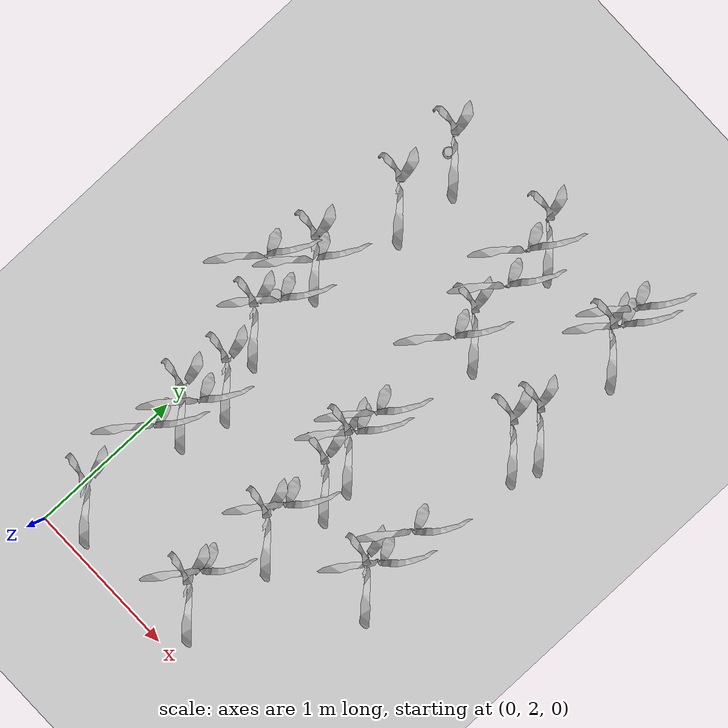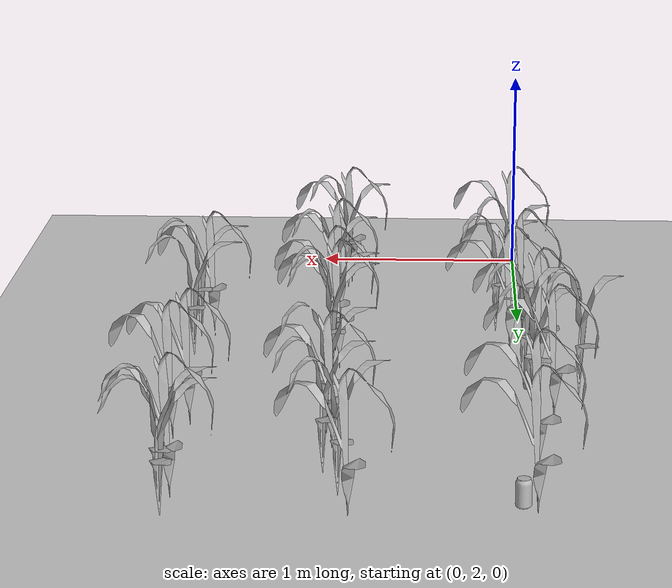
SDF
<sdf version="1.7">
 <world name="default">
  <model name="ground_plane">
   <static>1</static>
   <link name="link">
    <collision name="collision">
     <geometry><plane><normal>0 0 1</normal><size>100 100</size></plane></geometry>
     <surface>
      <contact><collide_bitmask>65535</collide_bitmask></contact>
      <friction><ode><mu>100</mu><mu2>50</mu2></ode></friction>
     </surface>
    </collision>
    <visual name="visual">
     <cast_shadows>0</cast_shadows>
     <geometry><plane><normal>0 0 1</normal><size>100 100</size></plane></geometry>
     <material>
      <script><uri>file://media/materials/scripts/gazebo.material</uri><name>Gazebo/Grey</name></script>
     </material>
    </visual>
   </link>
  </model>
  <model name="maize_01">
   <static>0</static>
   <pose>0.049824 3.46854 -0 0 -2e-06 0.000121</pose>
   <link name="maize_01_link">
    <inertial>
     <pose>0 0 0.01 0 -0 0</pose>
     <mass>0.3</mass>
     <inertia>
      <ixx>0.00334167</ixx>
      <ixy>0</ixy>
      <ixz>0</ixz>
      <iyy>0.00334167</iyy>
      <iyz>0</iyz>
      <izz>1.66667e-05</izz>
     </inertia>
     <pose>0 0 0.1 0 -0 0</pose>
    </inertial>
    <collision name="collision">
     <pose>0 0 0.2 0 -0 0</pose>
     <geometry><box><size>0.02 0.02 0.4</size></box></geometry>
     <surface><friction><ode><mu>10</mu><mu2>10</mu2></ode></friction></surface>
    </collision>
    <visual name="visual">
     <geometry>
      <mesh><uri>model://maize_01/meshes/maize_01.dae</uri><scale>0.683166 0.683166 0.683166</scale></mesh>
     </geometry>
    </visual>
   </link>
  </model>
  <model name="maize_02">
   <static>0</static>
   <pose>0.111758 3.16505 -0 0 -3e-06 7.7e-05</pose>
   <link name="maize_02_link">
    <inertial>
     <pose>0 0 0.01 0 -0 0</pose>
     <mass>0.3</mass>
     <inertia>
      <ixx>0.00334167</ixx>
      <ixy>0</ixy>
      <ixz>0</ixz>
      <iyy>0.00334167</iyy>
      <iyz>0</iyz>
      <izz>1.66667e-05</izz>
     </inertia>
     <pose>0 0 0.1 0 -0 0</pose>
    </inertial>
    <collision name="collision">
     <pose>0 0 0.2 0 -0 0</pose>
     <geometry><box><size>0.02 0.02 0.4</size></box></geometry>
     <surface><friction><ode><mu>10</mu><mu2>10</mu2></ode></friction></surface>
    </collision>
    <visual name="visual">
     <geometry>
      <mesh><uri>model://maize_02/meshes/maize_02.dae</uri><scale>0.683166 0.683166 0.683166</scale></mesh>
     </geometry>
    </visual>
   </link>
  </model>
  <model name="maize_01_0">
   <static>0</static>
   <pose>-0.015999 3.17206 1e-06 2e-05 -3.1e-05 -0.000122</pose>
   <link name="maize_01_link">
    <inertial>
     <pose>0 0 0.01 0 -0 0</pose>
     <mass>0.3</mass>
     <inertia>
      <ixx>0.00334167</ixx>
      <ixy>0</ixy>
      <ixz>0</ixz>
      <iyy>0.00334167</iyy>
      <iyz>0</iyz>
      <izz>1.66667e-05</izz>
     </inertia>
     <pose>0 0 0.1 0 -0 0</pose>
    </inertial>
    <collision name="collision">
     <pose>0 0 0.2 0 -0 0</pose>
     <geometry><box><size>0.02 0.02 0.4</size></box></geometry>
     <surface><friction><ode><mu>10</mu><mu2>10</mu2></ode></friction></surface>
    </collision>
    <visual name="visual">
     <geometry>
      <mesh><uri>model://maize_01/meshes/maize_01.dae</uri><scale>0.683166 0.683166 0.683166</scale></mesh>
     </geometry>
    </visual>
   </link>
  </model>
  <model name="maize_02_0">
   <static>0</static>
   <pose>0.042009 2.87635 -0 -4e-06 1.1e-05 4.1e-05</pose>
   <link name="maize_02_link">
    <inertial>
     <pose>0 0 0.01 0 -0 0</pose>
     <mass>0.3</mass>
     <inertia>
      <ixx>0.00334167</ixx>
      <ixy>0</ixy>
      <ixz>0</ixz>
      <iyy>0.00334167</iyy>
      <iyz>0</iyz>
      <izz>1.66667e-05</izz>
     </inertia>
     <pose>0 0 0.1 0 -0 0</pose>
    </inertial>
    <collision name="collision">
     <pose>0 0 0.2 0 -0 0</pose>
     <geometry><box><size>0.02 0.02 0.4</size></box></geometry>
     <surface><friction><ode><mu>10</mu><mu2>10</mu2></ode></friction></surface>
    </collision>
    <visual name="visual">
     <geometry>
      <mesh><uri>model://maize_02/meshes/maize_02.dae</uri><scale>0.683166 0.683166 0.683166</scale></mesh>
     </geometry>
    </visual>
   </link>
  </model>
  <model name="maize_01_1">
   <static>0</static>
   <pose>0.011051 2.38704 -1e-05 -2.3e-05 1e-06 9.6e-05</pose>
   <link name="maize_01_link">
    <inertial>
     <pose>0 0 0.01 0 -0 0</pose>
     <mass>0.3</mass>
     <inertia>
      <ixx>0.00334167</ixx>
      <ixy>0</ixy>
      <ixz>0</ixz>
      <iyy>0.00334167</iyy>
      <iyz>0</iyz>
      <izz>1.66667e-05</izz>
     </inertia>
     <pose>0 0 0.1 0 -0 0</pose>
    </inertial>
    <collision name="collision">
     <pose>0 0 0.2 0 -0 0</pose>
     <geometry><box><size>0.02 0.02 0.4</size></box></geometry>
     <surface><friction><ode><mu>10</mu><mu2>10</mu2></ode></friction></surface>
    </collision>
    <visual name="visual">
     <geometry>
      <mesh><uri>model://maize_01/meshes/maize_01.dae</uri><scale>0.683166 0.683166 0.683166</scale></mesh>
     </geometry>
    </visual>
   </link>
  </model>
  <model name="maize_01_6">
   <static>0</static>
   <pose>-0.076784 3.80554 -0 -1e-06 0 -8.8e-05</pose>
   <link name="maize_01_link">
    <inertial>
     <pose>0 0 0.01 0 -0 0</pose>
     <mass>0.3</mass>
     <inertia>
      <ixx>0.00334167</ixx>
      <ixy>0</ixy>
      <ixz>0</ixz>
      <iyy>0.00334167</iyy>
      <iyz>0</iyz>
      <izz>1.66667e-05</izz>
     </inertia>
     <pose>0 0 0.1 0 -0 0</pose>
    </inertial>
    <collision name="collision">
     <pose>0 0 0.2 0 -0 0</pose>
     <geometry><box><size>0.02 0.02 0.4</size></box></geometry>
     <surface><friction><ode><mu>10</mu><mu2>10</mu2></ode></friction></surface>
    </collision>
    <visual name="visual">
     <geometry>
      <mesh><uri>model://maize_01/meshes/maize_01.dae</uri><scale>0.683166 0.683166 0.683166</scale></mesh>
     </geometry>
    </visual>
   </link>
  </model>
  <model name="maize_02_7">
   <static>0</static>
   <pose>0.000118 3.91355 -0 0 -1e-06 -0.010854</pose>
   <link name="maize_02_link">
    <inertial>
     <pose>0 0 0.01 0 -0 0</pose>
     <mass>0.3</mass>
     <inertia>
      <ixx>0.00334167</ixx>
      <ixy>0</ixy>
      <ixz>0</ixz>
      <iyy>0.00334167</iyy>
      <iyz>0</iyz>
      <izz>1.66667e-05</izz>
     </inertia>
     <pose>0 0 0.1 0 -0 0</pose>
    </inertial>
    <collision name="collision">
     <pose>0 0 0.2 0 -0 0</pose>
     <geometry><box><size>0.02 0.02 0.4</size></box></geometry>
     <surface><friction><ode><mu>10</mu><mu2>10</mu2></ode></friction></surface>
    </collision>
    <visual name="visual">
     <geometry>
      <mesh><uri>model://maize_02/meshes/maize_02.dae</uri><scale>0.683166 0.683166 0.683166</scale></mesh>
     </geometry>
    </visual>
   </link>
  </model>
  <model name="maize_02_8">
   <static>0</static>
   <pose>-0.243542 4.02964 -1e-05 -0 2.1e-05 6.4e-05</pose>
   <link name="maize_02_link">
    <inertial>
     <pose>0 0 0.01 0 -0 0</pose>
     <mass>0.3</mass>
     <inertia>
      <ixx>0.00334167</ixx>
      <ixy>0</ixy>
      <ixz>0</ixz>
      <iyy>0.00334167</iyy>
      <iyz>0</iyz>
      <izz>1.66667e-05</izz>
     </inertia>
     <pose>0 0 0.1 0 -0 0</pose>
    </inertial>
    <collision name="collision">
     <pose>0 0 0.2 0 -0 0</pose>
     <geometry><box><size>0.02 0.02 0.4</size></box></geometry>
     <surface><friction><ode><mu>10</mu><mu2>10</mu2></ode></friction></surface>
    </collision>
    <visual name="visual">
     <geometry>
      <mesh><uri>model://maize_02/meshes/maize_02.dae</uri><scale>0.683166 0.683166 0.683166</scale></mesh>
     </geometry>
    </visual>
   </link>
  </model>
  <model name="maize_02_9">
   <static>0</static>
   <pose>-0.032657 4.22394 -0 1e-06 -0 -0.000264</pose>
   <link name="maize_02_link">
    <inertial>
     <pose>0 0 0.01 0 -0 0</pose>
     <mass>0.3</mass>
     <inertia>
      <ixx>0.00334167</ixx>
      <ixy>0</ixy>
      <ixz>0</ixz>
      <iyy>0.00334167</iyy>
      <iyz>0</iyz>
      <izz>1.66667e-05</izz>
     </inertia>
     <pose>0 0 0.1 0 -0 0</pose>
    </inertial>
    <collision name="collision">
     <pose>0 0 0.2 0 -0 0</pose>
     <geometry><box><size>0.02 0.02 0.4</size></box></geometry>
     <surface><friction><ode><mu>10</mu><mu2>10</mu2></ode></friction></surface>
    </collision>
    <visual name="visual">
     <geometry>
      <mesh><uri>model://maize_02/meshes/maize_02.dae</uri><scale>0.683166 0.683166 0.683166</scale></mesh>
     </geometry>
    </visual>
   </link>
  </model>
  <model name="maize_01_7">
   <static>0</static>
   <pose>-0.119233 4.33145 -0 0 2e-06 -1.6e-05</pose>
   <link name="maize_01_link">
    <inertial>
     <pose>0 0 0.01 0 -0 0</pose>
     <mass>0.3</mass>
     <inertia>
      <ixx>0.00334167</ixx>
      <ixy>0</ixy>
      <ixz>0</ixz>
      <iyy>0.00334167</iyy>
      <iyz>0</iyz>
      <izz>1.66667e-05</izz>
     </inertia>
     <pose>0 0 0.1 0 -0 0</pose>
    </inertial>
    <collision name="collision">
     <pose>0 0 0.2 0 -0 0</pose>
     <geometry><box><size>0.02 0.02 0.4</size></box></geometry>
     <surface><friction><ode><mu>10</mu><mu2>10</mu2></ode></friction></surface>
    </collision>
    <visual name="visual">
     <geometry>
      <mesh><uri>model://maize_01/meshes/maize_01.dae</uri><scale>0.683166 0.683166 0.683166</scale></mesh>
     </geometry>
    </visual>
   </link>
  </model>
  <model name="maize_01_8">
   <static>0</static>
   <pose>-0.031178 4.91656 0 1.8e-05 -1.1e-05 -7.1e-05</pose>
   <link name="maize_01_link">
    <inertial>
     <pose>0 0 0.01 0 -0 0</pose>
     <mass>0.3</mass>
     <inertia>
      <ixx>0.00334167</ixx>
      <ixy>0</ixy>
      <ixz>0</ixz>
      <iyy>0.00334167</iyy>
      <iyz>0</iyz>
      <izz>1.66667e-05</izz>
     </inertia>
     <pose>0 0 0.1 0 -0 0</pose>
    </inertial>
    <collision name="collision">
     <pose>0 0 0.2 0 -0 0</pose>
     <geometry><box><size>0.02 0.02 0.4</size></box></geometry>
     <surface><friction><ode><mu>10</mu><mu2>10</mu2></ode></friction></surface>
    </collision>
    <visual name="visual">
     <geometry>
      <mesh><uri>model://maize_01/meshes/maize_01.dae</uri><scale>0.683166 0.683166 0.683166</scale></mesh>
     </geometry>
    </visual>
   </link>
  </model>
  <model name="maize_01_9">
   <static>0</static>
   <pose>-0.013724 5.3365 0 -3.3e-05 -1.6e-05 -3.9e-05</pose>
   <link name="maize_01_link">
    <inertial>
     <pose>0 0 0.01 0 -0 0</pose>
     <mass>0.3</mass>
     <inertia>
      <ixx>0.00334167</ixx>
      <ixy>0</ixy>
      <ixz>0</ixz>
      <iyy>0.00334167</iyy>
      <iyz>0</iyz>
      <izz>1.66667e-05</izz>
     </inertia>
     <pose>0 0 0.1 0 -0 0</pose>
    </inertial>
    <collision name="collision">
     <pose>0 0 0.2 0 -0 0</pose>
     <geometry><box><size>0.02 0.02 0.4</size></box></geometry>
     <surface><friction><ode><mu>10</mu><mu2>10</mu2></ode></friction></surface>
    </collision>
    <visual name="visual">
     <geometry>
      <mesh><uri>model://maize_01/meshes/maize_01.dae</uri><scale>0.683166 0.683166 0.683166</scale></mesh>
     </geometry>
    </visual>
   </link>
  </model>
  <model name="coke_can">
   <link name="link">
    <inertial>
     <mass>0.39</mass>
     <inertia>
      <ixx>0.00055575</ixx>
      <ixy>0</ixy>
      <ixz>0</ixz>
      <iyy>0.00055575</iyy>
      <iyz>0</iyz>
      <izz>0.0001755</izz>
     </inertia>
    </inertial>
    <collision name="collision">
     <pose>0 0 0.065 0 -0 0</pose>
     <geometry><box><size>0.05 0.05 0.12</size></box></geometry>
     <surface>
      <friction><ode><mu>1</mu><mu2>1</mu2></ode></friction>
      <contact><ode><kp>1e+07</kp><kd>1</kd><min_depth>0.001</min_depth><max_vel>0.1</max_vel></ode></contact>
     </surface>
    </collision>
    <visual name="visual">
     <pose>0.003937 0.004724 -0.18 0 -0 0</pose>
     <geometry><mesh><uri>model://coke_can/meshes/coke_can.dae</uri></mesh></geometry>
    </visual>
   </link>
   <pose>0.041157 5.2468 -0.006 0 -0 0</pose>
  </model>
  <model name="beer">
   <link name="link">
    <inertial>
     <mass>0.39</mass>
     <inertia><ixx>0.00058</ixx><ixy>0</ixy><ixz>0</ixz><iyy>0.00058</iyy><iyz>0</iyz><izz>0.00019</izz></inertia>
    </inertial>
    <collision name="collision"><geometry><box><size>0.05 0.05 0.15</size></box></geometry></collision>
    <visual name="visual">
     <geometry><cylinder><radius>0.035</radius><length>0.15</length></cylinder></geometry>
     <material>
      <script>
       <uri>model://beer/materials/scripts</uri>
       <uri>model://beer/materials/textures</uri>
       <name>Beer/Diffuse</name>
      </script>
     </material>
    </visual>
   </link>
   <pose>-0.035525 3.91992 0.074999 3.6e-05 2.3e-05 -0.003499</pose>
  </model>
  <model name="maize_01_10">
   <static>0</static>
   <pose>0.724811 5.40268 -0 0 -2e-06 0.000193</pose>
   <link name="maize_01_link">
    <inertial>
     <pose>0 0 0.01 0 -0 0</pose>
     <mass>0.3</mass>
     <inertia>
      <ixx>0.00334167</ixx>
      <ixy>0</ixy>
      <ixz>0</ixz>
      <iyy>0.00334167</iyy>
      <iyz>0</iyz>
      <izz>1.66667e-05</izz>
     </inertia>
     <pose>0 0 0.1 0 -0 0</pose>
    </inertial>
    <collision name="collision">
     <pose>0 0 0.2 0 -0 0</pose>
     <geometry><box><size>0.02 0.02 0.4</size></box></geometry>
     <surface><friction><ode><mu>10</mu><mu2>10</mu2></ode></friction></surface>
    </collision>
    <visual name="visual">
     <geometry>
      <mesh><uri>model://maize_01/meshes/maize_01.dae</uri><scale>0.683166 0.683166 0.683166</scale></mesh>
     </geometry>
    </visual>
   </link>
  </model>
  <model name="maize_02_10">
   <static>0</static>
   <pose>0.776544 5.17782 0 -3e-06 -1.6e-05 0.000123</pose>
   <link name="maize_02_link">
    <inertial>
     <pose>0 0 0.01 0 -0 0</pose>
     <mass>0.3</mass>
     <inertia>
      <ixx>0.00334167</ixx>
      <ixy>0</ixy>
      <ixz>0</ixz>
      <iyy>0.00334167</iyy>
      <iyz>0</iyz>
      <izz>1.66667e-05</izz>
     </inertia>
     <pose>0 0 0.1 0 -0 0</pose>
    </inertial>
    <collision name="collision">
     <pose>0 0 0.2 0 -0 0</pose>
     <geometry><box><size>0.02 0.02 0.4</size></box></geometry>
     <surface><friction><ode><mu>10</mu><mu2>10</mu2></ode></friction></surface>
    </collision>
    <visual name="visual">
     <geometry>
      <mesh><uri>model://maize_02/meshes/maize_02.dae</uri><scale>0.683166 0.683166 0.683166</scale></mesh>
     </geometry>
    </visual>
   </link>
  </model>
  <model name="maize_02_11">
   <static>0</static>
   <pose>0.84916 4.94849 -0 3e-06 -0 7e-06</pose>
   <link name="maize_02_link">
    <inertial>
     <pose>0 0 0.01 0 -0 0</pose>
     <mass>0.3</mass>
     <inertia>
      <ixx>0.00334167</ixx>
      <ixy>0</ixy>
      <ixz>0</ixz>
      <iyy>0.00334167</iyy>
      <iyz>0</iyz>
      <izz>1.66667e-05</izz>
     </inertia>
     <pose>0 0 0.1 0 -0 0</pose>
    </inertial>
    <collision name="collision">
     <pose>0 0 0.2 0 -0 0</pose>
     <geometry><box><size>0.02 0.02 0.4</size></box></geometry>
     <surface><friction><ode><mu>10</mu><mu2>10</mu2></ode></friction></surface>
    </collision>
    <visual name="visual">
     <geometry>
      <mesh><uri>model://maize_02/meshes/maize_02.dae</uri><scale>0.683166 0.683166 0.683166</scale></mesh>
     </geometry>
    </visual>
   </link>
  </model>
  <model name="maize_01_11">
   <static>0</static>
   <pose>0.821763 4.71955 -0 0 3e-06 8.1e-05</pose>
   <link name="maize_01_link">
    <inertial>
     <pose>0 0 0.01 0 -0 0</pose>
     <mass>0.3</mass>
     <inertia>
      <ixx>0.00334167</ixx>
      <ixy>0</ixy>
      <ixz>0</ixz>
      <iyy>0.00334167</iyy>
      <iyz>0</iyz>
      <izz>1.66667e-05</izz>
     </inertia>
     <pose>0 0 0.1 0 -0 0</pose>
    </inertial>
    <collision name="collision">
     <pose>0 0 0.2 0 -0 0</pose>
     <geometry><box><size>0.02 0.02 0.4</size></box></geometry>
     <surface><friction><ode><mu>10</mu><mu2>10</mu2></ode></friction></surface>
    </collision>
    <visual name="visual">
     <geometry>
      <mesh><uri>model://maize_01/meshes/maize_01.dae</uri><scale>0.683166 0.683166 0.683166</scale></mesh>
     </geometry>
    </visual>
   </link>
  </model>
  <model name="maize_02_12">
   <static>0</static>
   <pose>0.856995 4.51664 1e-06 -2e-05 4.2e-05 -5.3e-05</pose>
   <link name="maize_02_link">
    <inertial>
     <pose>0 0 0.01 0 -0 0</pose>
     <mass>0.3</mass>
     <inertia>
      <ixx>0.00334167</ixx>
      <ixy>0</ixy>
      <ixz>0</ixz>
      <iyy>0.00334167</iyy>
      <iyz>0</iyz>
      <izz>1.66667e-05</izz>
     </inertia>
     <pose>0 0 0.1 0 -0 0</pose>
    </inertial>
    <collision name="collision">
     <pose>0 0 0.2 0 -0 0</pose>
     <geometry><box><size>0.02 0.02 0.4</size></box></geometry>
     <surface><friction><ode><mu>10</mu><mu2>10</mu2></ode></friction></surface>
    </collision>
    <visual name="visual">
     <geometry>
      <mesh><uri>model://maize_02/meshes/maize_02.dae</uri><scale>0.683166 0.683166 0.683166</scale></mesh>
     </geometry>
    </visual>
   </link>
  </model>
  <model name="maize_02_13">
   <static>0</static>
   <pose>0.868163 3.87583 -0 -3e-06 -0 -1.8e-05</pose>
   <link name="maize_02_link">
    <inertial>
     <pose>0 0 0.01 0 -0 0</pose>
     <mass>0.3</mass>
     <inertia>
      <ixx>0.00334167</ixx>
      <ixy>0</ixy>
      <ixz>0</ixz>
      <iyy>0.00334167</iyy>
      <iyz>0</iyz>
      <izz>1.66667e-05</izz>
     </inertia>
     <pose>0 0 0.1 0 -0 0</pose>
    </inertial>
    <collision name="collision">
     <pose>0 0 0.2 0 -0 0</pose>
     <geometry><box><size>0.02 0.02 0.4</size></box></geometry>
     <surface><friction><ode><mu>10</mu><mu2>10</mu2></ode></friction></surface>
    </collision>
    <visual name="visual">
     <geometry>
      <mesh><uri>model://maize_02/meshes/maize_02.dae</uri><scale>0.683166 0.683166 0.683166</scale></mesh>
     </geometry>
    </visual>
   </link>
  </model>
  <model name="maize_02_14">
   <static>0</static>
   <pose>0.872322 3.71669 -0 3e-06 -0 -1.7e-05</pose>
   <link name="maize_02_link">
    <inertial>
     <pose>0 0 0.01 0 -0 0</pose>
     <mass>0.3</mass>
     <inertia>
      <ixx>0.00334167</ixx>
      <ixy>0</ixy>
      <ixz>0</ixz>
      <iyy>0.00334167</iyy>
      <iyz>0</iyz>
      <izz>1.66667e-05</izz>
     </inertia>
     <pose>0 0 0.1 0 -0 0</pose>
    </inertial>
    <collision name="collision">
     <pose>0 0 0.2 0 -0 0</pose>
     <geometry><box><size>0.02 0.02 0.4</size></box></geometry>
     <surface><friction><ode><mu>10</mu><mu2>10</mu2></ode></friction></surface>
    </collision>
    <visual name="visual">
     <geometry>
      <mesh><uri>model://maize_02/meshes/maize_02.dae</uri><scale>0.683166 0.683166 0.683166</scale></mesh>
     </geometry>
    </visual>
   </link>
  </model>
  <model name="maize_01_12">
   <static>0</static>
   <pose>0.840863 3.70277 0 -6.7e-05 -2e-06 -0.000145</pose>
   <link name="maize_01_link">
    <inertial>
     <pose>0 0 0.01 0 -0 0</pose>
     <mass>0.3</mass>
     <inertia>
      <ixx>0.00334167</ixx>
      <ixy>0</ixy>
      <ixz>0</ixz>
      <iyy>0.00334167</iyy>
      <iyz>0</iyz>
      <izz>1.66667e-05</izz>
     </inertia>
     <pose>0 0 0.1 0 -0 0</pose>
    </inertial>
    <collision name="collision">
     <pose>0 0 0.2 0 -0 0</pose>
     <geometry><box><size>0.02 0.02 0.4</size></box></geometry>
     <surface><friction><ode><mu>10</mu><mu2>10</mu2></ode></friction></surface>
    </collision>
    <visual name="visual">
     <geometry>
      <mesh><uri>model://maize_01/meshes/maize_01.dae</uri><scale>0.683166 0.683166 0.683166</scale></mesh>
     </geometry>
    </visual>
   </link>
  </model>
  <model name="maize_01_13">
   <static>0</static>
   <pose>0.870665 3.48909 0 -1e-05 -2.2e-05 -8.9e-05</pose>
   <link name="maize_01_link">
    <inertial>
     <pose>0 0 0.01 0 -0 0</pose>
     <mass>0.3</mass>
     <inertia>
      <ixx>0.00334167</ixx>
      <ixy>0</ixy>
      <ixz>0</ixz>
      <iyy>0.00334167</iyy>
      <iyz>0</iyz>
      <izz>1.66667e-05</izz>
     </inertia>
     <pose>0 0 0.1 0 -0 0</pose>
    </inertial>
    <collision name="collision">
     <pose>0 0 0.2 0 -0 0</pose>
     <geometry><box><size>0.02 0.02 0.4</size></box></geometry>
     <surface><friction><ode><mu>10</mu><mu2>10</mu2></ode></friction></surface>
    </collision>
    <visual name="visual">
     <geometry>
      <mesh><uri>model://maize_01/meshes/maize_01.dae</uri><scale>0.683166 0.683166 0.683166</scale></mesh>
     </geometry>
    </visual>
   </link>
  </model>
  <model name="maize_02_15">
   <static>0</static>
   <pose>0.900619 3.11772 -0 1e-06 0 2.6e-05</pose>
   <link name="maize_02_link">
    <inertial>
     <pose>0 0 0.01 0 -0 0</pose>
     <mass>0.3</mass>
     <inertia>
      <ixx>0.00334167</ixx>
      <ixy>0</ixy>
      <ixz>0</ixz>
      <iyy>0.00334167</iyy>
      <iyz>0</iyz>
      <izz>1.66667e-05</izz>
     </inertia>
     <pose>0 0 0.1 0 -0 0</pose>
    </inertial>
    <collision name="collision">
     <pose>0 0 0.2 0 -0 0</pose>
     <geometry><box><size>0.02 0.02 0.4</size></box></geometry>
     <surface><friction><ode><mu>10</mu><mu2>10</mu2></ode></friction></surface>
    </collision>
    <visual name="visual">
     <geometry>
      <mesh><uri>model://maize_02/meshes/maize_02.dae</uri><scale>0.683166 0.683166 0.683166</scale></mesh>
     </geometry>
    </visual>
   </link>
  </model>
  <model name="maize_01_14">
   <static>0</static>
   <pose>0.868465 3.02958 -0 0 -3e-06 9.4e-05</pose>
   <link name="maize_01_link">
    <inertial>
     <pose>0 0 0.01 0 -0 0</pose>
     <mass>0.3</mass>
     <inertia>
      <ixx>0.00334167</ixx>
      <ixy>0</ixy>
      <ixz>0</ixz>
      <iyy>0.00334167</iyy>
      <iyz>0</iyz>
      <izz>1.66667e-05</izz>
     </inertia>
     <pose>0 0 0.1 0 -0 0</pose>
    </inertial>
    <collision name="collision">
     <pose>0 0 0.2 0 -0 0</pose>
     <geometry><box><size>0.02 0.02 0.4</size></box></geometry>
     <surface><friction><ode><mu>10</mu><mu2>10</mu2></ode></friction></surface>
    </collision>
    <visual name="visual">
     <geometry>
      <mesh><uri>model://maize_01/meshes/maize_01.dae</uri><scale>0.683166 0.683166 0.683166</scale></mesh>
     </geometry>
    </visual>
   </link>
  </model>
  <model name="maize_02_16">
   <static>0</static>
   <pose>0.854904 2.50047 0 0 1.2e-05 -4.2e-05</pose>
   <link name="maize_02_link">
    <inertial>
     <pose>0 0 0.01 0 -0 0</pose>
     <mass>0.3</mass>
     <inertia>
      <ixx>0.00334167</ixx>
      <ixy>0</ixy>
      <ixz>0</ixz>
      <iyy>0.00334167</iyy>
      <iyz>0</iyz>
      <izz>1.66667e-05</izz>
     </inertia>
     <pose>0 0 0.1 0 -0 0</pose>
    </inertial>
    <collision name="collision">
     <pose>0 0 0.2 0 -0 0</pose>
     <geometry><box><size>0.02 0.02 0.4</size></box></geometry>
     <surface><friction><ode><mu>10</mu><mu2>10</mu2></ode></friction></surface>
    </collision>
    <visual name="visual">
     <geometry>
      <mesh><uri>model://maize_02/meshes/maize_02.dae</uri><scale>0.683166 0.683166 0.683166</scale></mesh>
     </geometry>
    </visual>
   </link>
  </model>
  <model name="maize_01_15">
   <static>0</static>
   <pose>0.837841 2.43256 -0 3e-06 0 3.9e-05</pose>
   <link name="maize_01_link">
    <inertial>
     <pose>0 0 0.01 0 -0 0</pose>
     <mass>0.3</mass>
     <inertia>
      <ixx>0.00334167</ixx>
      <ixy>0</ixy>
      <ixz>0</ixz>
      <iyy>0.00334167</iyy>
      <iyz>0</iyz>
      <izz>1.66667e-05</izz>
     </inertia>
     <pose>0 0 0.1 0 -0 0</pose>
    </inertial>
    <collision name="collision">
     <pose>0 0 0.2 0 -0 0</pose>
     <geometry><box><size>0.02 0.02 0.4</size></box></geometry>
     <surface><friction><ode><mu>10</mu><mu2>10</mu2></ode></friction></surface>
    </collision>
    <visual name="visual">
     <geometry>
      <mesh><uri>model://maize_01/meshes/maize_01.dae</uri><scale>0.683166 0.683166 0.683166</scale></mesh>
     </geometry>
    </visual>
   </link>
  </model>
  <model name="maize_01_25">
   <static>0</static>
   <pose>1.46312 3.26689 -0 0 -1e-06 1.5e-05</pose>
   <link name="maize_01_link">
    <inertial>
     <pose>0 0 0.01 0 -0 0</pose>
     <mass>0.3</mass>
     <inertia>
      <ixx>0.00334167</ixx>
      <ixy>0</ixy>
      <ixz>0</ixz>
      <iyy>0.00334167</iyy>
      <iyz>0</iyz>
      <izz>1.66667e-05</izz>
     </inertia>
     <pose>0 0 0.1 0 -0 0</pose>
    </inertial>
    <collision name="collision">
     <pose>0 0 0.2 0 -0 0</pose>
     <geometry><box><size>0.02 0.02 0.4</size></box></geometry>
     <surface><friction><ode><mu>10</mu><mu2>10</mu2></ode></friction></surface>
    </collision>
    <visual name="visual">
     <geometry>
      <mesh><uri>model://maize_01/meshes/maize_01.dae</uri><scale>0.683166 0.683166 0.683166</scale></mesh>
     </geometry>
    </visual>
   </link>
  </model>
  <model name="maize_02_29">
   <static>0</static>
   <pose>1.52625 3.29351 0 2e-06 1.8e-05 4.8e-05</pose>
   <link name="maize_02_link">
    <inertial>
     <pose>0 0 0.01 0 -0 0</pose>
     <mass>0.3</mass>
     <inertia>
      <ixx>0.00334167</ixx>
      <ixy>0</ixy>
      <ixz>0</ixz>
      <iyy>0.00334167</iyy>
      <iyz>0</iyz>
      <izz>1.66667e-05</izz>
     </inertia>
     <pose>0 0 0.1 0 -0 0</pose>
    </inertial>
    <collision name="collision">
     <pose>0 0 0.2 0 -0 0</pose>
     <geometry><box><size>0.02 0.02 0.4</size></box></geometry>
     <surface><friction><ode><mu>10</mu><mu2>10</mu2></ode></friction></surface>
    </collision>
    <visual name="visual">
     <geometry>
      <mesh><uri>model://maize_02/meshes/maize_02.dae</uri><scale>0.683166 0.683166 0.683166</scale></mesh>
     </geometry>
    </visual>
   </link>
  </model>
  <model name="maize_02_30">
   <static>0</static>
   <pose>1.53057 3.56459 1e-06 8e-06 -4.9e-05 1.9e-05</pose>
   <link name="maize_02_link">
    <inertial>
     <pose>0 0 0.01 0 -0 0</pose>
     <mass>0.3</mass>
     <inertia>
      <ixx>0.00334167</ixx>
      <ixy>0</ixy>
      <ixz>0</ixz>
      <iyy>0.00334167</iyy>
      <iyz>0</iyz>
      <izz>1.66667e-05</izz>
     </inertia>
     <pose>0 0 0.1 0 -0 0</pose>
    </inertial>
    <collision name="collision">
     <pose>0 0 0.2 0 -0 0</pose>
     <geometry><box><size>0.02 0.02 0.4</size></box></geometry>
     <surface><friction><ode><mu>10</mu><mu2>10</mu2></ode></friction></surface>
    </collision>
    <visual name="visual">
     <geometry>
      <mesh><uri>model://maize_02/meshes/maize_02.dae</uri><scale>0.683166 0.683166 0.683166</scale></mesh>
     </geometry>
    </visual>
   </link>
  </model>
  <model name="maize_01_26">
   <static>0</static>
   <pose>1.44827 4.44465 -0 0 3e-06 1e-05</pose>
   <link name="maize_01_link">
    <inertial>
     <pose>0 0 0.01 0 -0 0</pose>
     <mass>0.3</mass>
     <inertia>
      <ixx>0.00334167</ixx>
      <ixy>0</ixy>
      <ixz>0</ixz>
      <iyy>0.00334167</iyy>
      <iyz>0</iyz>
      <izz>1.66667e-05</izz>
     </inertia>
     <pose>0 0 0.1 0 -0 0</pose>
    </inertial>
    <collision name="collision">
     <pose>0 0 0.2 0 -0 0</pose>
     <geometry><box><size>0.02 0.02 0.4</size></box></geometry>
     <surface><friction><ode><mu>10</mu><mu2>10</mu2></ode></friction></surface>
    </collision>
    <visual name="visual">
     <geometry>
      <mesh><uri>model://maize_01/meshes/maize_01.dae</uri><scale>0.683166 0.683166 0.683166</scale></mesh>
     </geometry>
    </visual>
   </link>
  </model>
  <model name="maize_01_27">
   <static>0</static>
   <pose>1.50297 4.60712 0 7e-06 -4.2e-05 4.5e-05</pose>
   <link name="maize_01_link">
    <inertial>
     <pose>0 0 0.01 0 -0 0</pose>
     <mass>0.3</mass>
     <inertia>
      <ixx>0.00334167</ixx>
      <ixy>0</ixy>
      <ixz>0</ixz>
      <iyy>0.00334167</iyy>
      <iyz>0</iyz>
      <izz>1.66667e-05</izz>
     </inertia>
     <pose>0 0 0.1 0 -0 0</pose>
    </inertial>
    <collision name="collision">
     <pose>0 0 0.2 0 -0 0</pose>
     <geometry><box><size>0.02 0.02 0.4</size></box></geometry>
     <surface><friction><ode><mu>10</mu><mu2>10</mu2></ode></friction></surface>
    </collision>
    <visual name="visual">
     <geometry>
      <mesh><uri>model://maize_01/meshes/maize_01.dae</uri><scale>0.683166 0.683166 0.683166</scale></mesh>
     </geometry>
    </visual>
   </link>
  </model>
  <model name="maize_01_28">
   <static>0</static>
   <pose>1.43552 5.24636 -0 0 -0 2.1e-05</pose>
   <link name="maize_01_link">
    <inertial>
     <pose>0 0 0.01 0 -0 0</pose>
     <mass>0.3</mass>
     <inertia>
      <ixx>0.00334167</ixx>
      <ixy>0</ixy>
      <ixz>0</ixz>
      <iyy>0.00334167</iyy>
      <iyz>0</iyz>
      <izz>1.66667e-05</izz>
     </inertia>
     <pose>0 0 0.1 0 -0 0</pose>
    </inertial>
    <collision name="collision">
     <pose>0 0 0.2 0 -0 0</pose>
     <geometry><box><size>0.02 0.02 0.4</size></box></geometry>
     <surface><friction><ode><mu>10</mu><mu2>10</mu2></ode></friction></surface>
    </collision>
    <visual name="visual">
     <geometry>
      <mesh><uri>model://maize_01/meshes/maize_01.dae</uri><scale>0.683166 0.683166 0.683166</scale></mesh>
     </geometry>
    </visual>
   </link>
  </model>
  <model name="maize_02_31">
   <static>0</static>
   <pose>1.47616 5.28003 0 0 -2e-06 3.1e-05</pose>
   <link name="maize_02_link">
    <inertial>
     <pose>0 0 0.01 0 -0 0</pose>
     <mass>0.3</mass>
     <inertia>
      <ixx>0.00334167</ixx>
      <ixy>0</ixy>
      <ixz>0</ixz>
      <iyy>0.00334167</iyy>
      <iyz>0</iyz>
      <izz>1.66667e-05</izz>
     </inertia>
     <pose>0 0 0.1 0 -0 0</pose>
    </inertial>
    <collision name="collision">
     <pose>0 0 0.2 0 -0 0</pose>
     <geometry><box><size>0.02 0.02 0.4</size></box></geometry>
     <surface><friction><ode><mu>10</mu><mu2>10</mu2></ode></friction></surface>
    </collision>
    <visual name="visual">
     <geometry>
      <mesh><uri>model://maize_02/meshes/maize_02.dae</uri><scale>0.683166 0.683166 0.683166</scale></mesh>
     </geometry>
    </visual>
   </link>
  </model>
  <model name="maize_02_32">
   <static>0</static>
   <pose>1.45822 5.40415 0 0 -0 3.2e-05</pose>
   <link name="maize_02_link">
    <inertial>
     <pose>0 0 0.01 0 -0 0</pose>
     <mass>0.3</mass>
     <inertia>
      <ixx>0.00334167</ixx>
      <ixy>0</ixy>
      <ixz>0</ixz>
      <iyy>0.00334167</iyy>
      <iyz>0</iyz>
      <izz>1.66667e-05</izz>
     </inertia>
     <pose>0 0 0.1 0 -0 0</pose>
    </inertial>
    <collision name="collision">
     <pose>0 0 0.2 0 -0 0</pose>
     <geometry><box><size>0.02 0.02 0.4</size></box></geometry>
     <surface><friction><ode><mu>10</mu><mu2>10</mu2></ode></friction></surface>
    </collision>
    <visual name="visual">
     <geometry>
      <mesh><uri>model://maize_02/meshes/maize_02.dae</uri><scale>0.683166 0.683166 0.683166</scale></mesh>
     </geometry>
    </visual>
   </link>
  </model>
 </world>
</sdf>
